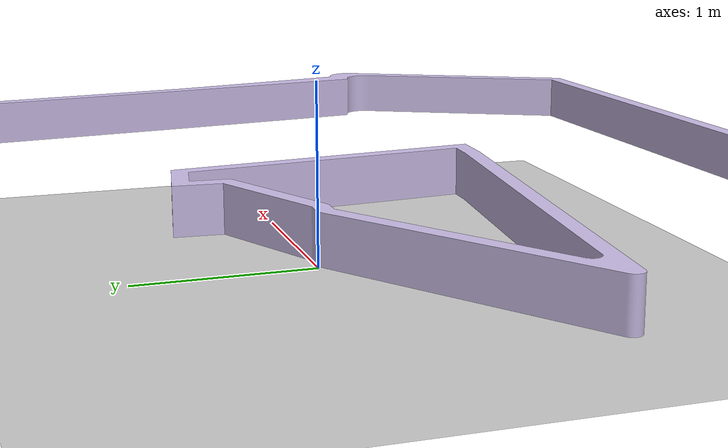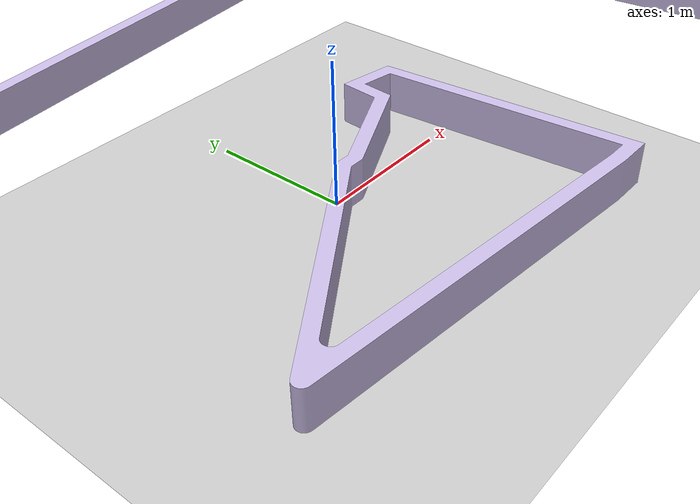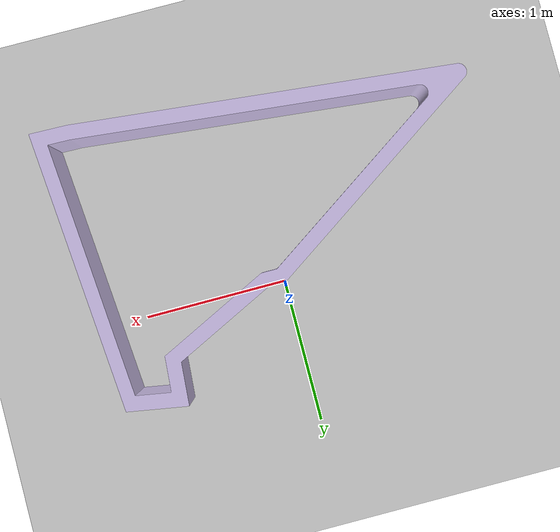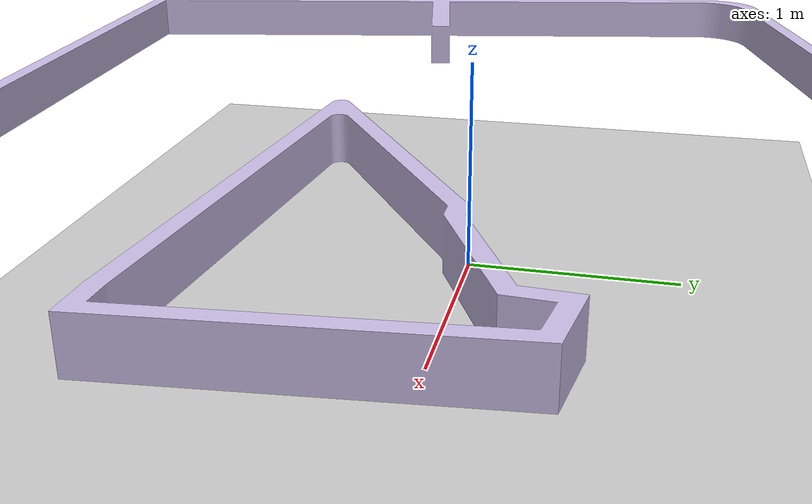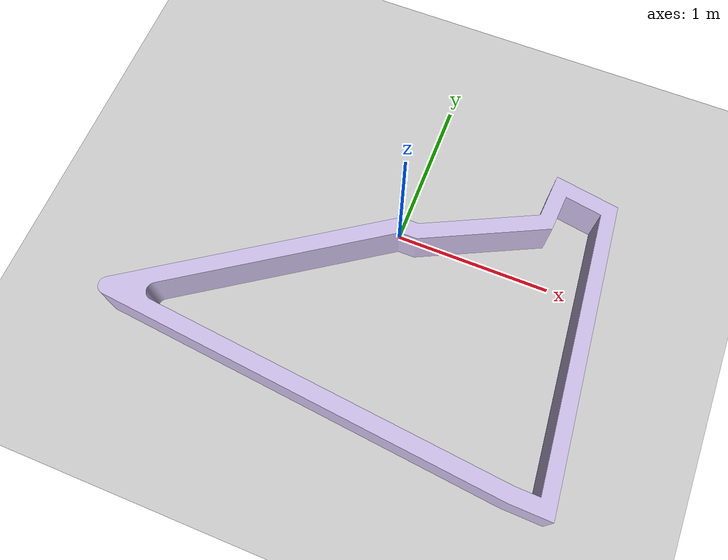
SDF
<?xml version="1.0"?>
<sdf version="1.6">
  <world name="sensor_test">
    <plugin
      filename="gz-sim-physics-system"
      name="gz::sim::systems::Physics">
    </plugin>

    <plugin
      filename="gz-sim-user-commands-system"
      name="gz::sim::systems::UserCommands">
    </plugin>

    <plugin
      filename="gz-sim-scene-broadcaster-system"
      name="gz::sim::systems::SceneBroadcaster">
    </plugin>

    <plugin
      filename="gz-sim-sensors-system"
      name="gz::sim::systems::Sensors">
      <render_engine>ogre2</render_engine>
    </plugin>

    <plugin
      filename="gz-sim-imu-system"
      name="gz::sim::systems::Imu">
    </plugin>

    <include>
      <uri>https://fuel.gazebosim.org/1.0/OpenRobotics/models/Ground Plane</uri>
    </include>

    <include>
      <uri>https://fuel.gazebosim.org/1.0/OpenRobotics/models/Sun</uri>
    </include>

    <scene>
      <shadows>false</shadows>
    </scene>

    <gui fullscreen='0'>
      <camera name='user_camera'>
        <pose frame=''>0.319654 -0.235002 9.29441 0 1.5138 0.009599</pose>
        <view_controller>orbit</view_controller>
        <projection_type>perspective</projection_type>
      </camera>
    </gui>

    <physics type="ode">
      <real_time_update_rate>100.0</real_time_update_rate> <!--used to be 1000.0-->
      <max_step_size>0.01</max_step_size> <!--this used to be 0.001-->
      <max_contacts>100</max_contacts> <!-- used to hopefully reduce lag -->
      <ode>
        <solver>
          <type>quick</type>
          <iters>150</iters>
          <precon_iters>0</precon_iters>
          <sor>1.400000</sor>
          <use_dynamic_moi_rescaling>1</use_dynamic_moi_rescaling>
        </solver>
        <constraints>
          <cfm>0.00001</cfm>
          <erp>0.2</erp>
          <contact_max_correcting_vel>2000.000000</contact_max_correcting_vel>
          <contact_surface_layer>0.01000</contact_surface_layer>
        </constraints>
      </ode>
    </physics>

    <!--Test LiDAR/ Localization field-->
    <include>
      <uri>model://lidar-test-field</uri>
    </include>

  </world>
</sdf>

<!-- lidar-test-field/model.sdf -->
<sdf version="1.7">
  <model name="lidar-test-field">

    <!-- model position in the world -->
    <pose>0 0 0.01 0 0 0</pose>

    <!-- locked postiton? -->
    <static>true</static>

    <link name="inside-walls">
      <!--pose of link relative to model-->
      <pose>0 0 0 0 0 0</pose>

      <!-- visual model-->
      <visual name="visual">
        <geometry>
          <mesh>
            <uri>model://lidar-test-field/meshes/lidar-test-1.dae</uri>
          </mesh>
        </geometry>
      </visual>

      <!-- collision geometry-->
      <collision name="collision">
        <geometry>
          <mesh>
            <uri>model://lidar-test-field/meshes/lidar-test-1.dae</uri>
          </mesh>
        </geometry>
      </collision>

      <inertial>
        <mass>1</mass>
        <inertia>
          <ixx>0.0002</ixx>
          <iyy>0.0002</iyy>
          <izz>0.0002</izz>
        </inertia>
      </inertial>

    </link>
    <link name="outside-walls">
    <!--pose of link relative to model-->
      <pose>0 0 0 0 0 0</pose>

      <!-- visual model-->
      <visual name="visual">
        <geometry>
          <mesh>
            <uri>model://lidar-test-field/meshes/lidar-test-2.dae</uri>
          </mesh>
        </geometry>
      </visual>

      <!-- collision geometry-->
      <collision name="collision">
        <geometry>
          <mesh>
            <uri>model://lidar-test-field/meshes/lidar-test-2.dae</uri>
          </mesh>
        </geometry>
      </collision>

      <inertial>
        <mass>1</mass>
        <inertia>
          <ixx>0.0002</ixx>
          <iyy>0.0002</iyy>
          <izz>0.0002</izz>
        </inertia>
      </inertial>

    </link>
  </model>
</sdf>
